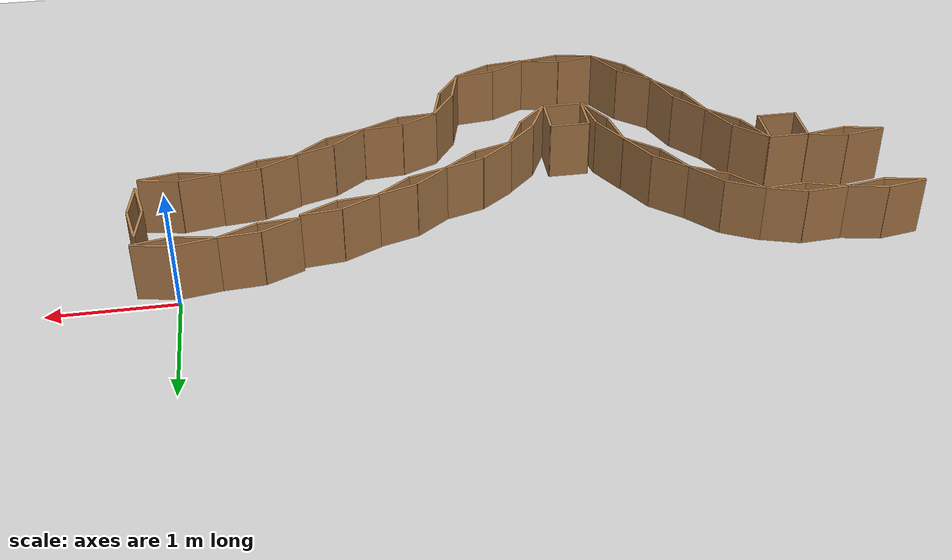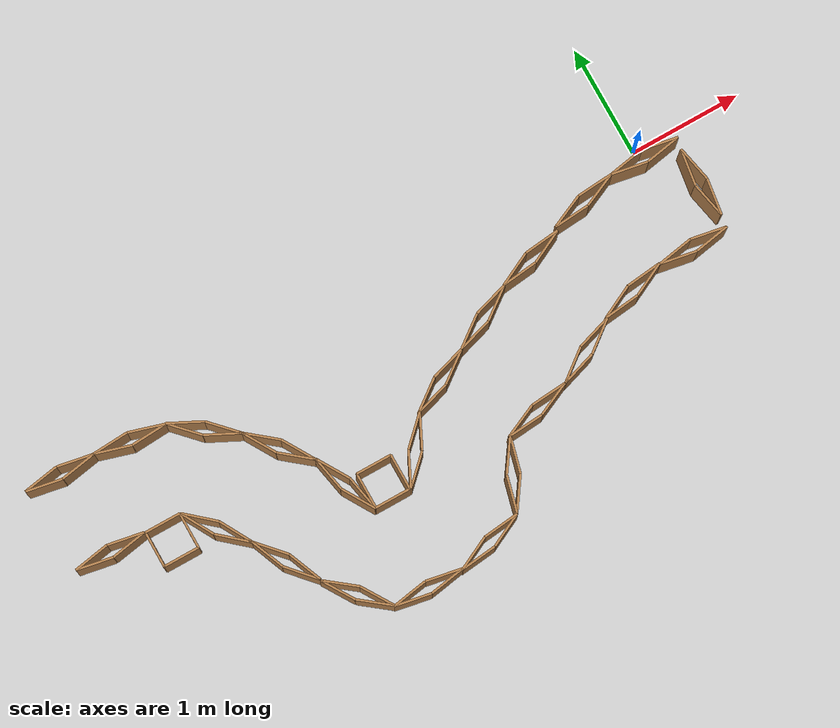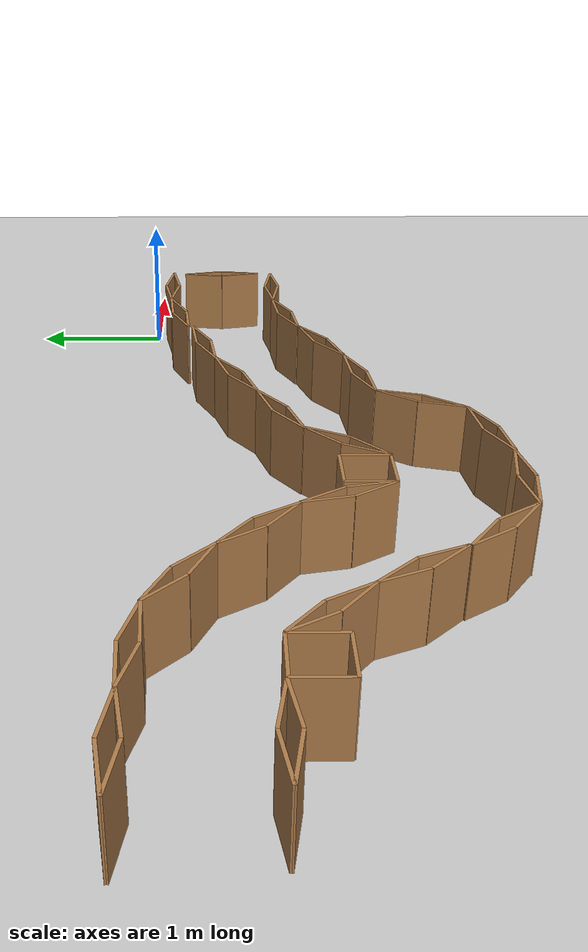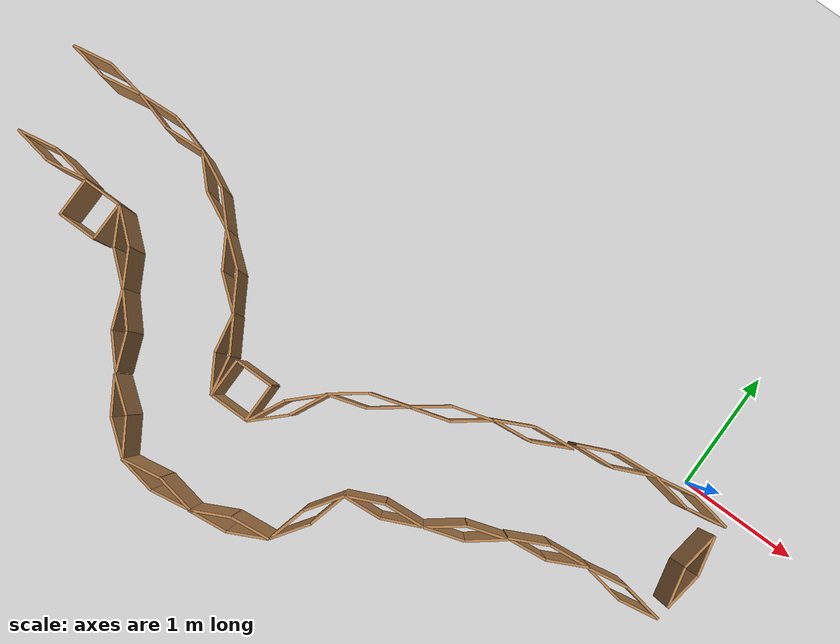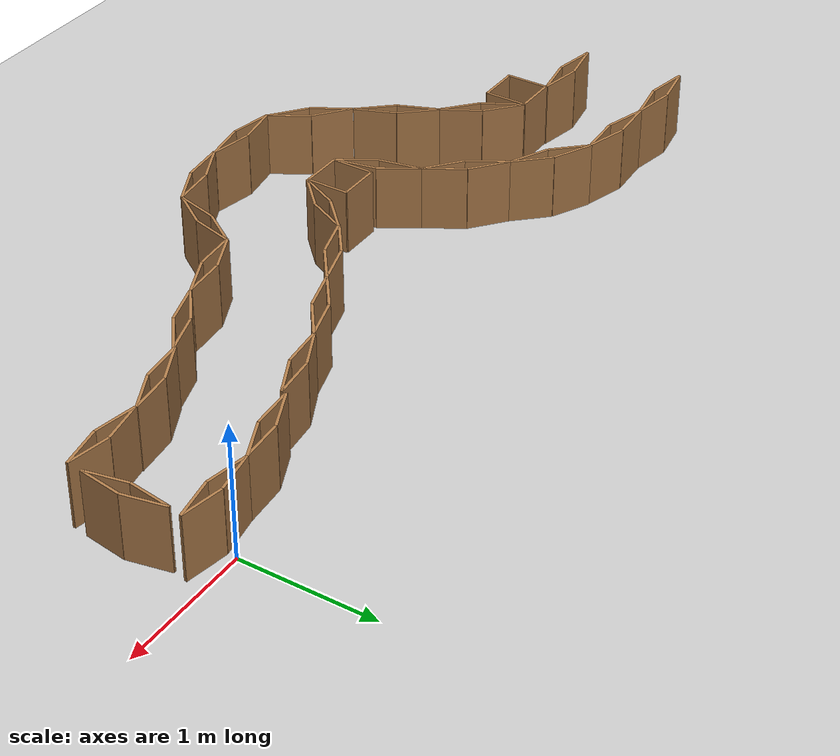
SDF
<sdf version="1.6">
 <world name="default">
  <model name="ground_plane">
   <static>1</static>
   <link name="link">
    <collision name="collision">
     <geometry><plane><normal>0 0 1</normal><size>100 100</size></plane></geometry>
     <surface>
      <contact><collide_bitmask>65535</collide_bitmask></contact>
      <friction><ode><mu>100</mu><mu2>50</mu2></ode></friction>
     </surface>
    </collision>
    <visual name="visual">
     <cast_shadows>0</cast_shadows>
     <geometry><plane><normal>0 0 1</normal><size>100 100</size></plane></geometry>
     <material>
      <script><uri>file://media/materials/scripts/gazebo.material</uri><name>Gazebo/Grey</name></script>
     </material>
    </visual>
   </link>
  </model>
  <light name="sun" type="directional">
   <pose>0 0 10 0 -0 0</pose>
   <diffuse>0.8 0.8 0.8 1</diffuse>
   <specular>0.2 0.2 0.2 1</specular>
   <attenuation>
    <range>1000</range>
    <constant>0.9</constant>
    <linear>0.01</linear>
    <quadratic>0.001</quadratic>
   </attenuation>
   <direction>-0.5 0.1 -0.9</direction>
  </light>
  <model name="folded_box">
   <pose>0 -0.131704 0 0 -0 0</pose>
   <static>1</static>
   <link name="box1">
    <pose>0.16 -0.028218 0.25 0 -0 0.174533</pose>
    <collision name="collision"><geometry><box><size>0.325 0.05 0.5</size></box></geometry></collision>
    <visual name="visual">
     <geometry><box><size>0.325 0.02 0.5</size></box></geometry>
     <material>
      <script><uri>file://media/materials/scripts/gazebo.material</uri><name>Gazebo/WoodPallet</name></script>
     </material>
    </visual>
   </link>
   <link name="box2">
    <pose>0.16 0.028218 0.25 0 0 -0.174533</pose>
    <collision name="collision"><geometry><box><size>0.325 0.05 0.5</size></box></geometry></collision>
    <visual name="visual">
     <geometry><box><size>0.325 0.02 0.5</size></box></geometry>
     <material>
      <script><uri>file://media/materials/scripts/gazebo.material</uri><name>Gazebo/WoodPallet</name></script>
     </material>
    </visual>
   </link>
   <link name="box3">
    <pose>-0.16 0.028218 0.25 0 -0 0.174533</pose>
    <collision name="collision"><geometry><box><size>0.325 0.05 0.5</size></box></geometry></collision>
    <visual name="visual">
     <geometry><box><size>0.325 0.02 0.5</size></box></geometry>
     <material>
      <script><uri>file://media/materials/scripts/gazebo.material</uri><name>Gazebo/WoodPallet</name></script>
     </material>
    </visual>
   </link>
   <link name="box4">
    <pose>-0.16 -0.028218 0.25 0 0 -0.174533</pose>
    <collision name="collision"><geometry><box><size>0.325 0.05 0.5</size></box></geometry></collision>
    <visual name="visual">
     <geometry><box><size>0.325 0.02 0.5</size></box></geometry>
     <material>
      <script><uri>file://media/materials/scripts/gazebo.material</uri><name>Gazebo/WoodPallet</name></script>
     </material>
    </visual>
   </link>
  </model>
  <gravity>0 0 -9.8</gravity>
  <magnetic_field>6e-06 2.3e-05 -4.2e-05</magnetic_field>
  <atmosphere type="adiabatic"/>
  <physics name="default_physics" default="0" type="ode">
   <max_step_size>0.001</max_step_size>
   <real_time_factor>1</real_time_factor>
   <real_time_update_rate>1000</real_time_update_rate>
  </physics>
  <scene><ambient>0.4 0.4 0.4 1</ambient><background>0.7 0.7 0.7 1</background><shadows>1</shadows></scene>
  <audio><device>default</device></audio>
  <spherical_coordinates>
   <surface_model>EARTH_WGS84</surface_model>
   <latitude_deg>0</latitude_deg>
   <longitude_deg>0</longitude_deg>
   <elevation>0</elevation>
   <heading_deg>0</heading_deg>
  </spherical_coordinates>
  <model name="folded_box_clone">
   <static>1</static>
   <link name="box1">
    <pose>0.16 -0.028218 0.25 0 -0 0.174533</pose>
    <collision name="collision"><geometry><box><size>0.325 0.05 0.5</size></box></geometry></collision>
    <visual name="visual">
     <geometry><box><size>0.325 0.02 0.5</size></box></geometry>
     <material>
      <script><uri>file://media/materials/scripts/gazebo.material</uri><name>Gazebo/WoodPallet</name></script>
     </material>
    </visual>
   </link>
   <link name="box2">
    <pose>0.16 0.028218 0.25 0 0 -0.174533</pose>
    <collision name="collision"><geometry><box><size>0.325 0.05 0.5</size></box></geometry></collision>
    <visual name="visual">
     <geometry><box><size>0.325 0.02 0.5</size></box></geometry>
     <material>
      <script><uri>file://media/materials/scripts/gazebo.material</uri><name>Gazebo/WoodPallet</name></script>
     </material>
    </visual>
   </link>
   <link name="box3">
    <pose>-0.16 0.028218 0.25 0 -0 0.174533</pose>
    <collision name="collision"><geometry><box><size>0.325 0.05 0.5</size></box></geometry></collision>
    <visual name="visual">
     <geometry><box><size>0.325 0.02 0.5</size></box></geometry>
     <material>
      <script><uri>file://media/materials/scripts/gazebo.material</uri><name>Gazebo/WoodPallet</name></script>
     </material>
    </visual>
   </link>
   <link name="box4">
    <pose>-0.16 -0.028218 0.25 0 0 -0.174533</pose>
    <collision name="collision"><geometry><box><size>0.325 0.05 0.5</size></box></geometry></collision>
    <visual name="visual">
     <geometry><box><size>0.325 0.02 0.5</size></box></geometry>
     <material>
      <script><uri>file://media/materials/scripts/gazebo.material</uri><name>Gazebo/WoodPallet</name></script>
     </material>
    </visual>
   </link>
   <pose>-0.018518 -0.981342 0 0 -0 0</pose>
  </model>
  <model name="folded_box_clone_clone">
   <static>1</static>
   <link name="box1">
    <pose>0.16 -0.028218 0.25 0 -0 0.174533</pose>
    <collision name="collision"><geometry><box><size>0.325 0.05 0.5</size></box></geometry></collision>
    <visual name="visual">
     <geometry><box><size>0.325 0.02 0.5</size></box></geometry>
     <material>
      <script><uri>file://media/materials/scripts/gazebo.material</uri><name>Gazebo/WoodPallet</name></script>
     </material>
    </visual>
   </link>
   <link name="box2">
    <pose>0.16 0.028218 0.25 0 0 -0.174533</pose>
    <collision name="collision"><geometry><box><size>0.325 0.05 0.5</size></box></geometry></collision>
    <visual name="visual">
     <geometry><box><size>0.325 0.02 0.5</size></box></geometry>
     <material>
      <script><uri>file://media/materials/scripts/gazebo.material</uri><name>Gazebo/WoodPallet</name></script>
     </material>
    </visual>
   </link>
   <link name="box3">
    <pose>-0.16 0.028218 0.25 0 -0 0.174533</pose>
    <collision name="collision"><geometry><box><size>0.325 0.05 0.5</size></box></geometry></collision>
    <visual name="visual">
     <geometry><box><size>0.325 0.02 0.5</size></box></geometry>
     <material>
      <script><uri>file://media/materials/scripts/gazebo.material</uri><name>Gazebo/WoodPallet</name></script>
     </material>
    </visual>
   </link>
   <link name="box4">
    <pose>-0.16 -0.028218 0.25 0 0 -0.174533</pose>
    <collision name="collision"><geometry><box><size>0.325 0.05 0.5</size></box></geometry></collision>
    <visual name="visual">
     <geometry><box><size>0.325 0.02 0.5</size></box></geometry>
     <material>
      <script><uri>file://media/materials/scripts/gazebo.material</uri><name>Gazebo/WoodPallet</name></script>
     </material>
    </visual>
   </link>
   <pose>-0.645001 -1.06489 0 0 -0 0.285681</pose>
  </model>
  <model name="folded_box_clone_clone_clone">
   <static>1</static>
   <link name="box1">
    <pose>0.16 -0.028218 0.25 0 -0 0.174533</pose>
    <collision name="collision"><geometry><box><size>0.325 0.05 0.5</size></box></geometry></collision>
    <visual name="visual">
     <geometry><box><size>0.325 0.02 0.5</size></box></geometry>
     <material>
      <script><uri>file://media/materials/scripts/gazebo.material</uri><name>Gazebo/WoodPallet</name></script>
     </material>
    </visual>
   </link>
   <link name="box2">
    <pose>0.16 0.028218 0.25 0 0 -0.174533</pose>
    <collision name="collision"><geometry><box><size>0.325 0.05 0.5</size></box></geometry></collision>
    <visual name="visual">
     <geometry><box><size>0.325 0.02 0.5</size></box></geometry>
     <material>
      <script><uri>file://media/materials/scripts/gazebo.material</uri><name>Gazebo/WoodPallet</name></script>
     </material>
    </visual>
   </link>
   <link name="box3">
    <pose>-0.16 0.028218 0.25 0 -0 0.174533</pose>
    <collision name="collision"><geometry><box><size>0.325 0.05 0.5</size></box></geometry></collision>
    <visual name="visual">
     <geometry><box><size>0.325 0.02 0.5</size></box></geometry>
     <material>
      <script><uri>file://media/materials/scripts/gazebo.material</uri><name>Gazebo/WoodPallet</name></script>
     </material>
    </visual>
   </link>
   <link name="box4">
    <pose>-0.16 -0.028218 0.25 0 0 -0.174533</pose>
    <collision name="collision"><geometry><box><size>0.325 0.05 0.5</size></box></geometry></collision>
    <visual name="visual">
     <geometry><box><size>0.325 0.02 0.5</size></box></geometry>
     <material>
      <script><uri>file://media/materials/scripts/gazebo.material</uri><name>Gazebo/WoodPallet</name></script>
     </material>
    </visual>
   </link>
   <pose>-0.630211 -0.211029 0 0 -0 0.250838</pose>
  </model>
  <model name="folded_box_clone_clone_clone_0">
   <static>1</static>
   <link name="box1">
    <pose>0.16 -0.028218 0.25 0 -0 0.174533</pose>
    <collision name="collision"><geometry><box><size>0.325 0.05 0.5</size></box></geometry></collision>
    <visual name="visual">
     <geometry><box><size>0.325 0.02 0.5</size></box></geometry>
     <material>
      <script><uri>file://media/materials/scripts/gazebo.material</uri><name>Gazebo/WoodPallet</name></script>
     </material>
    </visual>
   </link>
   <link name="box2">
    <pose>0.16 0.028218 0.25 0 0 -0.174533</pose>
    <collision name="collision"><geometry><box><size>0.325 0.05 0.5</size></box></geometry></collision>
    <visual name="visual">
     <geometry><box><size>0.325 0.02 0.5</size></box></geometry>
     <material>
      <script><uri>file://media/materials/scripts/gazebo.material</uri><name>Gazebo/WoodPallet</name></script>
     </material>
    </visual>
   </link>
   <link name="box3">
    <pose>-0.16 0.028218 0.25 0 -0 0.174533</pose>
    <collision name="collision"><geometry><box><size>0.325 0.05 0.5</size></box></geometry></collision>
    <visual name="visual">
     <geometry><box><size>0.325 0.02 0.5</size></box></geometry>
     <material>
      <script><uri>file://media/materials/scripts/gazebo.material</uri><name>Gazebo/WoodPallet</name></script>
     </material>
    </visual>
   </link>
   <link name="box4">
    <pose>-0.16 -0.028218 0.25 0 0 -0.174533</pose>
    <collision name="collision"><geometry><box><size>0.325 0.05 0.5</size></box></geometry></collision>
    <visual name="visual">
     <geometry><box><size>0.325 0.02 0.5</size></box></geometry>
     <material>
      <script><uri>file://media/materials/scripts/gazebo.material</uri><name>Gazebo/WoodPallet</name></script>
     </material>
    </visual>
   </link>
   <pose>-1.22509 -1.3107 0 0 -0 0.486291</pose>
  </model>
  <model name="folded_box_clone_clone_clone_0_clone">
   <static>1</static>
   <link name="box1">
    <pose>0.16 -0.028218 0.25 0 -0 0.174533</pose>
    <collision name="collision"><geometry><box><size>0.325 0.05 0.5</size></box></geometry></collision>
    <visual name="visual">
     <geometry><box><size>0.325 0.02 0.5</size></box></geometry>
     <material>
      <script><uri>file://media/materials/scripts/gazebo.material</uri><name>Gazebo/WoodPallet</name></script>
     </material>
    </visual>
   </link>
   <link name="box2">
    <pose>0.16 0.028218 0.25 0 0 -0.174533</pose>
    <collision name="collision"><geometry><box><size>0.325 0.05 0.5</size></box></geometry></collision>
    <visual name="visual">
     <geometry><box><size>0.325 0.02 0.5</size></box></geometry>
     <material>
      <script><uri>file://media/materials/scripts/gazebo.material</uri><name>Gazebo/WoodPallet</name></script>
     </material>
    </visual>
   </link>
   <link name="box3">
    <pose>-0.16 0.028218 0.25 0 -0 0.174533</pose>
    <collision name="collision"><geometry><box><size>0.325 0.05 0.5</size></box></geometry></collision>
    <visual name="visual">
     <geometry><box><size>0.325 0.02 0.5</size></box></geometry>
     <material>
      <script><uri>file://media/materials/scripts/gazebo.material</uri><name>Gazebo/WoodPallet</name></script>
     </material>
    </visual>
   </link>
   <link name="box4">
    <pose>-0.16 -0.028218 0.25 0 0 -0.174533</pose>
    <collision name="collision"><geometry><box><size>0.325 0.05 0.5</size></box></geometry></collision>
    <visual name="visual">
     <geometry><box><size>0.325 0.02 0.5</size></box></geometry>
     <material>
      <script><uri>file://media/materials/scripts/gazebo.material</uri><name>Gazebo/WoodPallet</name></script>
     </material>
    </visual>
   </link>
   <pose>-1.82404 -1.54183 0 0 -0 0.255467</pose>
  </model>
  <model name="folded_box_clone_clone_clone_0_clone_clone">
   <static>1</static>
   <link name="box1">
    <pose>0.16 -0.028218 0.25 0 -0 0.174533</pose>
    <collision name="collision"><geometry><box><size>0.325 0.05 0.5</size></box></geometry></collision>
    <visual name="visual">
     <geometry><box><size>0.325 0.02 0.5</size></box></geometry>
     <material>
      <script><uri>file://media/materials/scripts/gazebo.material</uri><name>Gazebo/WoodPallet</name></script>
     </material>
    </visual>
   </link>
   <link name="box2">
    <pose>0.16 0.028218 0.25 0 0 -0.174533</pose>
    <collision name="collision"><geometry><box><size>0.325 0.05 0.5</size></box></geometry></collision>
    <visual name="visual">
     <geometry><box><size>0.325 0.02 0.5</size></box></geometry>
     <material>
      <script><uri>file://media/materials/scripts/gazebo.material</uri><name>Gazebo/WoodPallet</name></script>
     </material>
    </visual>
   </link>
   <link name="box3">
    <pose>-0.16 0.028218 0.25 0 -0 0.174533</pose>
    <collision name="collision"><geometry><box><size>0.325 0.05 0.5</size></box></geometry></collision>
    <visual name="visual">
     <geometry><box><size>0.325 0.02 0.5</size></box></geometry>
     <material>
      <script><uri>file://media/materials/scripts/gazebo.material</uri><name>Gazebo/WoodPallet</name></script>
     </material>
    </visual>
   </link>
   <link name="box4">
    <pose>-0.16 -0.028218 0.25 0 0 -0.174533</pose>
    <collision name="collision"><geometry><box><size>0.325 0.05 0.5</size></box></geometry></collision>
    <visual name="visual">
     <geometry><box><size>0.325 0.02 0.5</size></box></geometry>
     <material>
      <script><uri>file://media/materials/scripts/gazebo.material</uri><name>Gazebo/WoodPallet</name></script>
     </material>
    </visual>
   </link>
   <pose>-2.25389 -1.91004 0 0 -0 1.14382</pose>
  </model>
  <model name="folded_box_clone_clone_clone_clone">
   <static>1</static>
   <link name="box1">
    <pose>0.16 -0.028218 0.25 0 -0 0.174533</pose>
    <collision name="collision"><geometry><box><size>0.325 0.05 0.5</size></box></geometry></collision>
    <visual name="visual">
     <geometry><box><size>0.325 0.02 0.5</size></box></geometry>
     <material>
      <script><uri>file://media/materials/scripts/gazebo.material</uri><name>Gazebo/WoodPallet</name></script>
     </material>
    </visual>
   </link>
   <link name="box2">
    <pose>0.16 0.028218 0.25 0 0 -0.174533</pose>
    <collision name="collision"><geometry><box><size>0.325 0.05 0.5</size></box></geometry></collision>
    <visual name="visual">
     <geometry><box><size>0.325 0.02 0.5</size></box></geometry>
     <material>
      <script><uri>file://media/materials/scripts/gazebo.material</uri><name>Gazebo/WoodPallet</name></script>
     </material>
    </visual>
   </link>
   <link name="box3">
    <pose>-0.16 0.028218 0.25 0 -0 0.174533</pose>
    <collision name="collision"><geometry><box><size>0.325 0.05 0.5</size></box></geometry></collision>
    <visual name="visual">
     <geometry><box><size>0.325 0.02 0.5</size></box></geometry>
     <material>
      <script><uri>file://media/materials/scripts/gazebo.material</uri><name>Gazebo/WoodPallet</name></script>
     </material>
    </visual>
   </link>
   <link name="box4">
    <pose>-0.16 -0.028218 0.25 0 0 -0.174533</pose>
    <collision name="collision"><geometry><box><size>0.325 0.05 0.5</size></box></geometry></collision>
    <visual name="visual">
     <geometry><box><size>0.325 0.02 0.5</size></box></geometry>
     <material>
      <script><uri>file://media/materials/scripts/gazebo.material</uri><name>Gazebo/WoodPallet</name></script>
     </material>
    </visual>
   </link>
   <pose>-1.24484 -0.414451 0 0 -0 0.285681</pose>
  </model>
  <model name="folded_box_clone_clone_clone_clone_clone">
   <static>1</static>
   <link name="box1">
    <pose>0.16 -0.028218 0.25 0 -0 0.174533</pose>
    <collision name="collision"><geometry><box><size>0.325 0.05 0.5</size></box></geometry></collision>
    <visual name="visual">
     <geometry><box><size>0.325 0.02 0.5</size></box></geometry>
     <material>
      <script><uri>file://media/materials/scripts/gazebo.material</uri><name>Gazebo/WoodPallet</name></script>
     </material>
    </visual>
   </link>
   <link name="box2">
    <pose>0.16 0.028218 0.25 0 0 -0.174533</pose>
    <collision name="collision"><geometry><box><size>0.325 0.05 0.5</size></box></geometry></collision>
    <visual name="visual">
     <geometry><box><size>0.325 0.02 0.5</size></box></geometry>
     <material>
      <script><uri>file://media/materials/scripts/gazebo.material</uri><name>Gazebo/WoodPallet</name></script>
     </material>
    </visual>
   </link>
   <link name="box3">
    <pose>-0.16 0.028218 0.25 0 -0 0.174533</pose>
    <collision name="collision"><geometry><box><size>0.325 0.05 0.5</size></box></geometry></collision>
    <visual name="visual">
     <geometry><box><size>0.325 0.02 0.5</size></box></geometry>
     <material>
      <script><uri>file://media/materials/scripts/gazebo.material</uri><name>Gazebo/WoodPallet</name></script>
     </material>
    </visual>
   </link>
   <link name="box4">
    <pose>-0.16 -0.028218 0.25 0 0 -0.174533</pose>
    <collision name="collision"><geometry><box><size>0.325 0.05 0.5</size></box></geometry></collision>
    <visual name="visual">
     <geometry><box><size>0.325 0.02 0.5</size></box></geometry>
     <material>
      <script><uri>file://media/materials/scripts/gazebo.material</uri><name>Gazebo/WoodPallet</name></script>
     </material>
    </visual>
   </link>
   <pose>-1.83477 -0.653256 0 0 -0 0.470834</pose>
  </model>
  <model name="folded_box_clone_clone_clone_clone_clone_clone">
   <static>1</static>
   <link name="box1">
    <pose>0.16 -0.028218 0.25 0 -0 0.174533</pose>
    <collision name="collision"><geometry><box><size>0.325 0.05 0.5</size></box></geometry></collision>
    <visual name="visual">
     <geometry><box><size>0.325 0.02 0.5</size></box></geometry>
     <material>
      <script><uri>file://media/materials/scripts/gazebo.material</uri><name>Gazebo/WoodPallet</name></script>
     </material>
    </visual>
   </link>
   <link name="box2">
    <pose>0.16 0.028218 0.25 0 0 -0.174533</pose>
    <collision name="collision"><geometry><box><size>0.325 0.05 0.5</size></box></geometry></collision>
    <visual name="visual">
     <geometry><box><size>0.325 0.02 0.5</size></box></geometry>
     <material>
      <script><uri>file://media/materials/scripts/gazebo.material</uri><name>Gazebo/WoodPallet</name></script>
     </material>
    </visual>
   </link>
   <link name="box3">
    <pose>-0.16 0.028218 0.25 0 -0 0.174533</pose>
    <collision name="collision"><geometry><box><size>0.325 0.05 0.5</size></box></geometry></collision>
    <visual name="visual">
     <geometry><box><size>0.325 0.02 0.5</size></box></geometry>
     <material>
      <script><uri>file://media/materials/scripts/gazebo.material</uri><name>Gazebo/WoodPallet</name></script>
     </material>
    </visual>
   </link>
   <link name="box4">
    <pose>-0.16 -0.028218 0.25 0 0 -0.174533</pose>
    <collision name="collision"><geometry><box><size>0.325 0.05 0.5</size></box></geometry></collision>
    <visual name="visual">
     <geometry><box><size>0.325 0.02 0.5</size></box></geometry>
     <material>
      <script><uri>file://media/materials/scripts/gazebo.material</uri><name>Gazebo/WoodPallet</name></script>
     </material>
    </visual>
   </link>
   <pose>-2.40169 -0.942246 0 0 -0 0.470834</pose>
  </model>
  <model name="folded_box_clone_clone_clone_clone_clone_clone_clone">
   <static>1</static>
   <link name="box1">
    <pose>0.16 -0.028218 0.25 0 -0 0.174533</pose>
    <collision name="collision"><geometry><box><size>0.325 0.05 0.5</size></box></geometry></collision>
    <visual name="visual">
     <geometry><box><size>0.325 0.02 0.5</size></box></geometry>
     <material>
      <script><uri>file://media/materials/scripts/gazebo.material</uri><name>Gazebo/WoodPallet</name></script>
     </material>
    </visual>
   </link>
   <link name="box2">
    <pose>0.16 0.028218 0.25 0 0 -0.174533</pose>
    <collision name="collision"><geometry><box><size>0.325 0.05 0.5</size></box></geometry></collision>
    <visual name="visual">
     <geometry><box><size>0.325 0.02 0.5</size></box></geometry>
     <material>
      <script><uri>file://media/materials/scripts/gazebo.material</uri><name>Gazebo/WoodPallet</name></script>
     </material>
    </visual>
   </link>
   <link name="box3">
    <pose>-0.16 0.028218 0.25 0 -0 0.174533</pose>
    <collision name="collision"><geometry><box><size>0.325 0.05 0.5</size></box></geometry></collision>
    <visual name="visual">
     <geometry><box><size>0.325 0.02 0.5</size></box></geometry>
     <material>
      <script><uri>file://media/materials/scripts/gazebo.material</uri><name>Gazebo/WoodPallet</name></script>
     </material>
    </visual>
   </link>
   <link name="box4">
    <pose>-0.16 -0.028218 0.25 0 0 -0.174533</pose>
    <collision name="collision"><geometry><box><size>0.325 0.05 0.5</size></box></geometry></collision>
    <visual name="visual">
     <geometry><box><size>0.325 0.02 0.5</size></box></geometry>
     <material>
      <script><uri>file://media/materials/scripts/gazebo.material</uri><name>Gazebo/WoodPallet</name></script>
     </material>
    </visual>
   </link>
   <pose>-2.85982 -1.3421 0 0 -0 0.946587</pose>
  </model>
  <model name="folded_box_clone_clone_clone_0_clone_clone_clone">
   <static>1</static>
   <link name="box1">
    <pose>0.16 -0.028218 0.25 0 -0 0.174533</pose>
    <collision name="collision"><geometry><box><size>0.325 0.05 0.5</size></box></geometry></collision>
    <visual name="visual">
     <geometry><box><size>0.325 0.02 0.5</size></box></geometry>
     <material>
      <script><uri>file://media/materials/scripts/gazebo.material</uri><name>Gazebo/WoodPallet</name></script>
     </material>
    </visual>
   </link>
   <link name="box2">
    <pose>0.16 0.028218 0.25 0 0 -0.174533</pose>
    <collision name="collision"><geometry><box><size>0.325 0.05 0.5</size></box></geometry></collision>
    <visual name="visual">
     <geometry><box><size>0.325 0.02 0.5</size></box></geometry>
     <material>
      <script><uri>file://media/materials/scripts/gazebo.material</uri><name>Gazebo/WoodPallet</name></script>
     </material>
    </visual>
   </link>
   <link name="box3">
    <pose>-0.16 0.028218 0.25 0 -0 0.174533</pose>
    <collision name="collision"><geometry><box><size>0.325 0.05 0.5</size></box></geometry></collision>
    <visual name="visual">
     <geometry><box><size>0.325 0.02 0.5</size></box></geometry>
     <material>
      <script><uri>file://media/materials/scripts/gazebo.material</uri><name>Gazebo/WoodPallet</name></script>
     </material>
    </visual>
   </link>
   <link name="box4">
    <pose>-0.16 -0.028218 0.25 0 0 -0.174533</pose>
    <collision name="collision"><geometry><box><size>0.325 0.05 0.5</size></box></geometry></collision>
    <visual name="visual">
     <geometry><box><size>0.325 0.02 0.5</size></box></geometry>
     <material>
      <script><uri>file://media/materials/scripts/gazebo.material</uri><name>Gazebo/WoodPallet</name></script>
     </material>
    </visual>
   </link>
   <pose>-2.69667 -2.29807 0 0 -0 0.284525</pose>
  </model>
  <model name="folded_box_2">
   <pose>-3.21543 -1.43819 0 0 -0 0</pose>
   <static>1</static>
   <link name="box1">
    <pose>0 0.16 0.25 0 -0 0</pose>
    <collision name="collision"><geometry><box><size>0.325 0.05 0.5</size></box></geometry></collision>
    <visual name="visual">
     <geometry><box><size>0.325 0.02 0.5</size></box></geometry>
     <material>
      <script><uri>file://media/materials/scripts/gazebo.material</uri><name>Gazebo/WoodPallet</name></script>
     </material>
    </visual>
   </link>
   <link name="box2">
    <pose>0 -0.16 0.25 0 -0 0</pose>
    <collision name="collision"><geometry><box><size>0.325 0.05 0.5</size></box></geometry></collision>
    <visual name="visual">
     <geometry><box><size>0.325 0.02 0.5</size></box></geometry>
     <material>
      <script><uri>file://media/materials/scripts/gazebo.material</uri><name>Gazebo/WoodPallet</name></script>
     </material>
    </visual>
   </link>
   <link name="box3">
    <pose>0.16 0 0.25 0 -0 1.5708</pose>
    <collision name="collision"><geometry><box><size>0.325 0.05 0.5</size></box></geometry></collision>
    <visual name="visual">
     <geometry><box><size>0.325 0.02 0.5</size></box></geometry>
     <material>
      <script><uri>file://media/materials/scripts/gazebo.material</uri><name>Gazebo/WoodPallet</name></script>
     </material>
    </visual>
   </link>
   <link name="box4">
    <pose>-0.16 0 0.25 0 -0 1.5708</pose>
    <collision name="collision"><geometry><box><size>0.325 0.05 0.5</size></box></geometry></collision>
    <visual name="visual">
     <geometry><box><size>0.325 0.02 0.5</size></box></geometry>
     <material>
      <script><uri>file://media/materials/scripts/gazebo.material</uri><name>Gazebo/WoodPallet</name></script>
     </material>
    </visual>
   </link>
  </model>
  <model name="folded_box_clone_clone_clone_0_clone_clone_clone_clone">
   <static>1</static>
   <link name="box1">
    <pose>0.16 -0.028218 0.25 0 -0 0.174533</pose>
    <collision name="collision"><geometry><box><size>0.325 0.05 0.5</size></box></geometry></collision>
    <visual name="visual">
     <geometry><box><size>0.325 0.02 0.5</size></box></geometry>
     <material>
      <script><uri>file://media/materials/scripts/gazebo.material</uri><name>Gazebo/WoodPallet</name></script>
     </material>
    </visual>
   </link>
   <link name="box2">
    <pose>0.16 0.028218 0.25 0 0 -0.174533</pose>
    <collision name="collision"><geometry><box><size>0.325 0.05 0.5</size></box></geometry></collision>
    <visual name="visual">
     <geometry><box><size>0.325 0.02 0.5</size></box></geometry>
     <material>
      <script><uri>file://media/materials/scripts/gazebo.material</uri><name>Gazebo/WoodPallet</name></script>
     </material>
    </visual>
   </link>
   <link name="box3">
    <pose>-0.16 0.028218 0.25 0 -0 0.174533</pose>
    <collision name="collision"><geometry><box><size>0.325 0.05 0.5</size></box></geometry></collision>
    <visual name="visual">
     <geometry><box><size>0.325 0.02 0.5</size></box></geometry>
     <material>
      <script><uri>file://media/materials/scripts/gazebo.material</uri><name>Gazebo/WoodPallet</name></script>
     </material>
    </visual>
   </link>
   <link name="box4">
    <pose>-0.16 -0.028218 0.25 0 0 -0.174533</pose>
    <collision name="collision"><geometry><box><size>0.325 0.05 0.5</size></box></geometry></collision>
    <visual name="visual">
     <geometry><box><size>0.325 0.02 0.5</size></box></geometry>
     <material>
      <script><uri>file://media/materials/scripts/gazebo.material</uri><name>Gazebo/WoodPallet</name></script>
     </material>
    </visual>
   </link>
   <pose>-3.31803 -2.37847 0 0 0 -0.006556</pose>
  </model>
  <model name="folded_box_clone_clone_clone_0_clone_clone_clone_clone_clone">
   <static>1</static>
   <link name="box1">
    <pose>0.16 -0.028218 0.25 0 -0 0.174533</pose>
    <collision name="collision"><geometry><box><size>0.325 0.05 0.5</size></box></geometry></collision>
    <visual name="visual">
     <geometry><box><size>0.325 0.02 0.5</size></box></geometry>
     <material>
      <script><uri>file://media/materials/scripts/gazebo.material</uri><name>Gazebo/WoodPallet</name></script>
     </material>
    </visual>
   </link>
   <link name="box2">
    <pose>0.16 0.028218 0.25 0 0 -0.174533</pose>
    <collision name="collision"><geometry><box><size>0.325 0.05 0.5</size></box></geometry></collision>
    <visual name="visual">
     <geometry><box><size>0.325 0.02 0.5</size></box></geometry>
     <material>
      <script><uri>file://media/materials/scripts/gazebo.material</uri><name>Gazebo/WoodPallet</name></script>
     </material>
    </visual>
   </link>
   <link name="box3">
    <pose>-0.16 0.028218 0.25 0 -0 0.174533</pose>
    <collision name="collision"><geometry><box><size>0.325 0.05 0.5</size></box></geometry></collision>
    <visual name="visual">
     <geometry><box><size>0.325 0.02 0.5</size></box></geometry>
     <material>
      <script><uri>file://media/materials/scripts/gazebo.material</uri><name>Gazebo/WoodPallet</name></script>
     </material>
    </visual>
   </link>
   <link name="box4">
    <pose>-0.16 -0.028218 0.25 0 0 -0.174533</pose>
    <collision name="collision"><geometry><box><size>0.325 0.05 0.5</size></box></geometry></collision>
    <visual name="visual">
     <geometry><box><size>0.325 0.02 0.5</size></box></geometry>
     <material>
      <script><uri>file://media/materials/scripts/gazebo.material</uri><name>Gazebo/WoodPallet</name></script>
     </material>
    </visual>
   </link>
   <pose>-3.84628 -2.13509 0 0 0 -0.836745</pose>
  </model>
  <model name="folded_box_clone_clone_clone_clone_clone_clone_clone_clone">
   <static>1</static>
   <link name="box1">
    <pose>0.16 -0.028218 0.25 0 -0 0.174533</pose>
    <collision name="collision"><geometry><box><size>0.325 0.05 0.5</size></box></geometry></collision>
    <visual name="visual">
     <geometry><box><size>0.325 0.02 0.5</size></box></geometry>
     <material>
      <script><uri>file://media/materials/scripts/gazebo.material</uri><name>Gazebo/WoodPallet</name></script>
     </material>
    </visual>
   </link>
   <link name="box2">
    <pose>0.16 0.028218 0.25 0 0 -0.174533</pose>
    <collision name="collision"><geometry><box><size>0.325 0.05 0.5</size></box></geometry></collision>
    <visual name="visual">
     <geometry><box><size>0.325 0.02 0.5</size></box></geometry>
     <material>
      <script><uri>file://media/materials/scripts/gazebo.material</uri><name>Gazebo/WoodPallet</name></script>
     </material>
    </visual>
   </link>
   <link name="box3">
    <pose>-0.16 0.028218 0.25 0 -0 0.174533</pose>
    <collision name="collision"><geometry><box><size>0.325 0.05 0.5</size></box></geometry></collision>
    <visual name="visual">
     <geometry><box><size>0.325 0.02 0.5</size></box></geometry>
     <material>
      <script><uri>file://media/materials/scripts/gazebo.material</uri><name>Gazebo/WoodPallet</name></script>
     </material>
    </visual>
   </link>
   <link name="box4">
    <pose>-0.16 -0.028218 0.25 0 0 -0.174533</pose>
    <collision name="collision"><geometry><box><size>0.325 0.05 0.5</size></box></geometry></collision>
    <visual name="visual">
     <geometry><box><size>0.325 0.02 0.5</size></box></geometry>
     <material>
      <script><uri>file://media/materials/scripts/gazebo.material</uri><name>Gazebo/WoodPallet</name></script>
     </material>
    </visual>
   </link>
   <pose>-3.49412 -1.30335 0 0 -0 1.93858</pose>
  </model>
  <model name="folded_box_clone_clone_clone_0_clone_clone_clone_clone_clone_clone">
   <static>1</static>
   <link name="box1">
    <pose>0.16 -0.028218 0.25 0 -0 0.174533</pose>
    <collision name="collision"><geometry><box><size>0.325 0.05 0.5</size></box></geometry></collision>
    <visual name="visual">
     <geometry><box><size>0.325 0.02 0.5</size></box></geometry>
     <material>
      <script><uri>file://media/materials/scripts/gazebo.material</uri><name>Gazebo/WoodPallet</name></script>
     </material>
    </visual>
   </link>
   <link name="box2">
    <pose>0.16 0.028218 0.25 0 0 -0.174533</pose>
    <collision name="collision"><geometry><box><size>0.325 0.05 0.5</size></box></geometry></collision>
    <visual name="visual">
     <geometry><box><size>0.325 0.02 0.5</size></box></geometry>
     <material>
      <script><uri>file://media/materials/scripts/gazebo.material</uri><name>Gazebo/WoodPallet</name></script>
     </material>
    </visual>
   </link>
   <link name="box3">
    <pose>-0.16 0.028218 0.25 0 -0 0.174533</pose>
    <collision name="collision"><geometry><box><size>0.325 0.05 0.5</size></box></geometry></collision>
    <visual name="visual">
     <geometry><box><size>0.325 0.02 0.5</size></box></geometry>
     <material>
      <script><uri>file://media/materials/scripts/gazebo.material</uri><name>Gazebo/WoodPallet</name></script>
     </material>
    </visual>
   </link>
   <link name="box4">
    <pose>-0.16 -0.028218 0.25 0 0 -0.174533</pose>
    <collision name="collision"><geometry><box><size>0.325 0.05 0.5</size></box></geometry></collision>
    <visual name="visual">
     <geometry><box><size>0.325 0.02 0.5</size></box></geometry>
     <material>
      <script><uri>file://media/materials/scripts/gazebo.material</uri><name>Gazebo/WoodPallet</name></script>
     </material>
    </visual>
   </link>
   <pose>-4.22734 -1.61654 0 0 0 -1.0126</pose>
  </model>
  <model name="folded_box_clone_clone_clone_0_clone_clone_clone_clone_clone_clone_clone">
   <static>1</static>
   <link name="box1">
    <pose>0.16 -0.028218 0.25 0 -0 0.174533</pose>
    <collision name="collision"><geometry><box><size>0.325 0.05 0.5</size></box></geometry></collision>
    <visual name="visual">
     <geometry><box><size>0.325 0.02 0.5</size></box></geometry>
     <material>
      <script><uri>file://media/materials/scripts/gazebo.material</uri><name>Gazebo/WoodPallet</name></script>
     </material>
    </visual>
   </link>
   <link name="box2">
    <pose>0.16 0.028218 0.25 0 0 -0.174533</pose>
    <collision name="collision"><geometry><box><size>0.325 0.05 0.5</size></box></geometry></collision>
    <visual name="visual">
     <geometry><box><size>0.325 0.02 0.5</size></box></geometry>
     <material>
      <script><uri>file://media/materials/scripts/gazebo.material</uri><name>Gazebo/WoodPallet</name></script>
     </material>
    </visual>
   </link>
   <link name="box3">
    <pose>-0.16 0.028218 0.25 0 -0 0.174533</pose>
    <collision name="collision"><geometry><box><size>0.325 0.05 0.5</size></box></geometry></collision>
    <visual name="visual">
     <geometry><box><size>0.325 0.02 0.5</size></box></geometry>
     <material>
      <script><uri>file://media/materials/scripts/gazebo.material</uri><name>Gazebo/WoodPallet</name></script>
     </material>
    </visual>
   </link>
   <link name="box4">
    <pose>-0.16 -0.028218 0.25 0 0 -0.174533</pose>
    <collision name="collision"><geometry><box><size>0.325 0.05 0.5</size></box></geometry></collision>
    <visual name="visual">
     <geometry><box><size>0.325 0.02 0.5</size></box></geometry>
     <material>
      <script><uri>file://media/materials/scripts/gazebo.material</uri><name>Gazebo/WoodPallet</name></script>
     </material>
    </visual>
   </link>
   <pose>-4.59467 -1.10276 0 0 0 -0.88994</pose>
  </model>
  <model name="folded_box_clone_clone_clone_clone_clone_clone_clone_clone_clone">
   <static>1</static>
   <link name="box1">
    <pose>0.16 -0.028218 0.25 0 -0 0.174533</pose>
    <collision name="collision"><geometry><box><size>0.325 0.05 0.5</size></box></geometry></collision>
    <visual name="visual">
     <geometry><box><size>0.325 0.02 0.5</size></box></geometry>
     <material>
      <script><uri>file://media/materials/scripts/gazebo.material</uri><name>Gazebo/WoodPallet</name></script>
     </material>
    </visual>
   </link>
   <link name="box2">
    <pose>0.16 0.028218 0.25 0 0 -0.174533</pose>
    <collision name="collision"><geometry><box><size>0.325 0.05 0.5</size></box></geometry></collision>
    <visual name="visual">
     <geometry><box><size>0.325 0.02 0.5</size></box></geometry>
     <material>
      <script><uri>file://media/materials/scripts/gazebo.material</uri><name>Gazebo/WoodPallet</name></script>
     </material>
    </visual>
   </link>
   <link name="box3">
    <pose>-0.16 0.028218 0.25 0 -0 0.174533</pose>
    <collision name="collision"><geometry><box><size>0.325 0.05 0.5</size></box></geometry></collision>
    <visual name="visual">
     <geometry><box><size>0.325 0.02 0.5</size></box></geometry>
     <material>
      <script><uri>file://media/materials/scripts/gazebo.material</uri><name>Gazebo/WoodPallet</name></script>
     </material>
    </visual>
   </link>
   <link name="box4">
    <pose>-0.16 -0.028218 0.25 0 0 -0.174533</pose>
    <collision name="collision"><geometry><box><size>0.325 0.05 0.5</size></box></geometry></collision>
    <visual name="visual">
     <geometry><box><size>0.325 0.02 0.5</size></box></geometry>
     <material>
      <script><uri>file://media/materials/scripts/gazebo.material</uri><name>Gazebo/WoodPallet</name></script>
     </material>
    </visual>
   </link>
   <pose>-3.82301 -0.764385 0 0 -0 2.28459</pose>
  </model>
  <model name="folded_box_2_clone">
   <pose>-4.96166 -1.01293 0 0 -0 0</pose>
   <static>1</static>
   <link name="box1">
    <pose>0 0.16 0.25 0 -0 0</pose>
    <collision name="collision"><geometry><box><size>0.325 0.05 0.5</size></box></geometry></collision>
    <visual name="visual">
     <geometry><box><size>0.325 0.02 0.5</size></box></geometry>
     <material>
      <script><uri>file://media/materials/scripts/gazebo.material</uri><name>Gazebo/WoodPallet</name></script>
     </material>
    </visual>
   </link>
   <link name="box2">
    <pose>0 -0.16 0.25 0 -0 0</pose>
    <collision name="collision"><geometry><box><size>0.325 0.05 0.5</size></box></geometry></collision>
    <visual name="visual">
     <geometry><box><size>0.325 0.02 0.5</size></box></geometry>
     <material>
      <script><uri>file://media/materials/scripts/gazebo.material</uri><name>Gazebo/WoodPallet</name></script>
     </material>
    </visual>
   </link>
   <link name="box3">
    <pose>0.16 0 0.25 0 -0 1.5708</pose>
    <collision name="collision"><geometry><box><size>0.325 0.05 0.5</size></box></geometry></collision>
    <visual name="visual">
     <geometry><box><size>0.325 0.02 0.5</size></box></geometry>
     <material>
      <script><uri>file://media/materials/scripts/gazebo.material</uri><name>Gazebo/WoodPallet</name></script>
     </material>
    </visual>
   </link>
   <link name="box4">
    <pose>-0.16 0 0.25 0 -0 1.5708</pose>
    <collision name="collision"><geometry><box><size>0.325 0.05 0.5</size></box></geometry></collision>
    <visual name="visual">
     <geometry><box><size>0.325 0.02 0.5</size></box></geometry>
     <material>
      <script><uri>file://media/materials/scripts/gazebo.material</uri><name>Gazebo/WoodPallet</name></script>
     </material>
    </visual>
   </link>
  </model>
  <model name="folded_box_clone_clone_clone_clone_clone_clone_clone_clone_clone_clone">
   <static>1</static>
   <link name="box1">
    <pose>0.16 -0.028218 0.25 0 -0 0.174533</pose>
    <collision name="collision"><geometry><box><size>0.325 0.05 0.5</size></box></geometry></collision>
    <visual name="visual">
     <geometry><box><size>0.325 0.02 0.5</size></box></geometry>
     <material>
      <script><uri>file://media/materials/scripts/gazebo.material</uri><name>Gazebo/WoodPallet</name></script>
     </material>
    </visual>
   </link>
   <link name="box2">
    <pose>0.16 0.028218 0.25 0 0 -0.174533</pose>
    <collision name="collision"><geometry><box><size>0.325 0.05 0.5</size></box></geometry></collision>
    <visual name="visual">
     <geometry><box><size>0.325 0.02 0.5</size></box></geometry>
     <material>
      <script><uri>file://media/materials/scripts/gazebo.material</uri><name>Gazebo/WoodPallet</name></script>
     </material>
    </visual>
   </link>
   <link name="box3">
    <pose>-0.16 0.028218 0.25 0 -0 0.174533</pose>
    <collision name="collision"><geometry><box><size>0.325 0.05 0.5</size></box></geometry></collision>
    <visual name="visual">
     <geometry><box><size>0.325 0.02 0.5</size></box></geometry>
     <material>
      <script><uri>file://media/materials/scripts/gazebo.material</uri><name>Gazebo/WoodPallet</name></script>
     </material>
    </visual>
   </link>
   <link name="box4">
    <pose>-0.16 -0.028218 0.25 0 0 -0.174533</pose>
    <collision name="collision"><geometry><box><size>0.325 0.05 0.5</size></box></geometry></collision>
    <visual name="visual">
     <geometry><box><size>0.325 0.02 0.5</size></box></geometry>
     <material>
      <script><uri>file://media/materials/scripts/gazebo.material</uri><name>Gazebo/WoodPallet</name></script>
     </material>
    </visual>
   </link>
   <pose>-4.28763 -0.334996 0 0 -0 2.50707</pose>
  </model>
  <model name="folded_box_clone_clone_clone_clone_clone_clone_clone_clone_clone_clone_clone">
   <static>1</static>
   <link name="box1">
    <pose>0.16 -0.028218 0.25 0 -0 0.174533</pose>
    <collision name="collision"><geometry><box><size>0.325 0.05 0.5</size></box></geometry></collision>
    <visual name="visual">
     <geometry><box><size>0.325 0.02 0.5</size></box></geometry>
     <material>
      <script><uri>file://media/materials/scripts/gazebo.material</uri><name>Gazebo/WoodPallet</name></script>
     </material>
    </visual>
   </link>
   <link name="box2">
    <pose>0.16 0.028218 0.25 0 0 -0.174533</pose>
    <collision name="collision"><geometry><box><size>0.325 0.05 0.5</size></box></geometry></collision>
    <visual name="visual">
     <geometry><box><size>0.325 0.02 0.5</size></box></geometry>
     <material>
      <script><uri>file://media/materials/scripts/gazebo.material</uri><name>Gazebo/WoodPallet</name></script>
     </material>
    </visual>
   </link>
   <link name="box3">
    <pose>-0.16 0.028218 0.25 0 -0 0.174533</pose>
    <collision name="collision"><geometry><box><size>0.325 0.05 0.5</size></box></geometry></collision>
    <visual name="visual">
     <geometry><box><size>0.325 0.02 0.5</size></box></geometry>
     <material>
      <script><uri>file://media/materials/scripts/gazebo.material</uri><name>Gazebo/WoodPallet</name></script>
     </material>
    </visual>
   </link>
   <link name="box4">
    <pose>-0.16 -0.028218 0.25 0 0 -0.174533</pose>
    <collision name="collision"><geometry><box><size>0.325 0.05 0.5</size></box></geometry></collision>
    <visual name="visual">
     <geometry><box><size>0.325 0.02 0.5</size></box></geometry>
     <material>
      <script><uri>file://media/materials/scripts/gazebo.material</uri><name>Gazebo/WoodPallet</name></script>
     </material>
    </visual>
   </link>
   <pose>-4.8631 -0.113343 0 0 -0 3.02831</pose>
  </model>
  <model name="folded_box_clone_clone_clone_clone_clone_clone_clone_clone_clone_clone_clone_clone">
   <static>1</static>
   <link name="box1">
    <pose>0.16 -0.028218 0.25 0 -0 0.174533</pose>
    <collision name="collision"><geometry><box><size>0.325 0.05 0.5</size></box></geometry></collision>
    <visual name="visual">
     <geometry><box><size>0.325 0.02 0.5</size></box></geometry>
     <material>
      <script><uri>file://media/materials/scripts/gazebo.material</uri><name>Gazebo/WoodPallet</name></script>
     </material>
    </visual>
   </link>
   <link name="box2">
    <pose>0.16 0.028218 0.25 0 0 -0.174533</pose>
    <collision name="collision"><geometry><box><size>0.325 0.05 0.5</size></box></geometry></collision>
    <visual name="visual">
     <geometry><box><size>0.325 0.02 0.5</size></box></geometry>
     <material>
      <script><uri>file://media/materials/scripts/gazebo.material</uri><name>Gazebo/WoodPallet</name></script>
     </material>
    </visual>
   </link>
   <link name="box3">
    <pose>-0.16 0.028218 0.25 0 -0 0.174533</pose>
    <collision name="collision"><geometry><box><size>0.325 0.05 0.5</size></box></geometry></collision>
    <visual name="visual">
     <geometry><box><size>0.325 0.02 0.5</size></box></geometry>
     <material>
      <script><uri>file://media/materials/scripts/gazebo.material</uri><name>Gazebo/WoodPallet</name></script>
     </material>
    </visual>
   </link>
   <link name="box4">
    <pose>-0.16 -0.028218 0.25 0 0 -0.174533</pose>
    <collision name="collision"><geometry><box><size>0.325 0.05 0.5</size></box></geometry></collision>
    <visual name="visual">
     <geometry><box><size>0.325 0.02 0.5</size></box></geometry>
     <material>
      <script><uri>file://media/materials/scripts/gazebo.material</uri><name>Gazebo/WoodPallet</name></script>
     </material>
    </visual>
   </link>
   <pose>-5.49957 -0.077744 0 0 -0 3.13735</pose>
  </model>
  <model name="folded_box_clone_clone_clone_clone_clone_clone_clone_clone_clone_clone_clone_clone_clone">
   <static>1</static>
   <link name="box1">
    <pose>0.16 -0.028218 0.25 0 -0 0.174533</pose>
    <collision name="collision"><geometry><box><size>0.325 0.05 0.5</size></box></geometry></collision>
    <visual name="visual">
     <geometry><box><size>0.325 0.02 0.5</size></box></geometry>
     <material>
      <script><uri>file://media/materials/scripts/gazebo.material</uri><name>Gazebo/WoodPallet</name></script>
     </material>
    </visual>
   </link>
   <link name="box2">
    <pose>0.16 0.028218 0.25 0 0 -0.174533</pose>
    <collision name="collision"><geometry><box><size>0.325 0.05 0.5</size></box></geometry></collision>
    <visual name="visual">
     <geometry><box><size>0.325 0.02 0.5</size></box></geometry>
     <material>
      <script><uri>file://media/materials/scripts/gazebo.material</uri><name>Gazebo/WoodPallet</name></script>
     </material>
    </visual>
   </link>
   <link name="box3">
    <pose>-0.16 0.028218 0.25 0 -0 0.174533</pose>
    <collision name="collision"><geometry><box><size>0.325 0.05 0.5</size></box></geometry></collision>
    <visual name="visual">
     <geometry><box><size>0.325 0.02 0.5</size></box></geometry>
     <material>
      <script><uri>file://media/materials/scripts/gazebo.material</uri><name>Gazebo/WoodPallet</name></script>
     </material>
    </visual>
   </link>
   <link name="box4">
    <pose>-0.16 -0.028218 0.25 0 0 -0.174533</pose>
    <collision name="collision"><geometry><box><size>0.325 0.05 0.5</size></box></geometry></collision>
    <visual name="visual">
     <geometry><box><size>0.325 0.02 0.5</size></box></geometry>
     <material>
      <script><uri>file://media/materials/scripts/gazebo.material</uri><name>Gazebo/WoodPallet</name></script>
     </material>
    </visual>
   </link>
   <pose>-5.44788 -0.845684 0 0 -0 3.13735</pose>
  </model>
  <model name="folded_box_clone_clone_0">
   <static>1</static>
   <link name="box1">
    <pose>0.16 -0.028218 0.25 0 -0 0.174533</pose>
    <collision name="collision"><geometry><box><size>0.325 0.05 0.5</size></box></geometry></collision>
    <visual name="visual">
     <geometry><box><size>0.325 0.02 0.5</size></box></geometry>
     <material>
      <script><uri>file://media/materials/scripts/gazebo.material</uri><name>Gazebo/WoodPallet</name></script>
     </material>
    </visual>
   </link>
   <link name="box2">
    <pose>0.16 0.028218 0.25 0 0 -0.174533</pose>
    <collision name="collision"><geometry><box><size>0.325 0.05 0.5</size></box></geometry></collision>
    <visual name="visual">
     <geometry><box><size>0.325 0.02 0.5</size></box></geometry>
     <material>
      <script><uri>file://media/materials/scripts/gazebo.material</uri><name>Gazebo/WoodPallet</name></script>
     </material>
    </visual>
   </link>
   <link name="box3">
    <pose>-0.16 0.028218 0.25 0 -0 0.174533</pose>
    <collision name="collision"><geometry><box><size>0.325 0.05 0.5</size></box></geometry></collision>
    <visual name="visual">
     <geometry><box><size>0.325 0.02 0.5</size></box></geometry>
     <material>
      <script><uri>file://media/materials/scripts/gazebo.material</uri><name>Gazebo/WoodPallet</name></script>
     </material>
    </visual>
   </link>
   <link name="box4">
    <pose>-0.16 -0.028218 0.25 0 0 -0.174533</pose>
    <collision name="collision"><geometry><box><size>0.325 0.05 0.5</size></box></geometry></collision>
    <visual name="visual">
     <geometry><box><size>0.325 0.02 0.5</size></box></geometry>
     <material>
      <script><uri>file://media/materials/scripts/gazebo.material</uri><name>Gazebo/WoodPallet</name></script>
     </material>
    </visual>
   </link>
   <pose>0.3004 -0.552531 0 0 0 -1.54135</pose>
  </model>
 </world>
</sdf>
